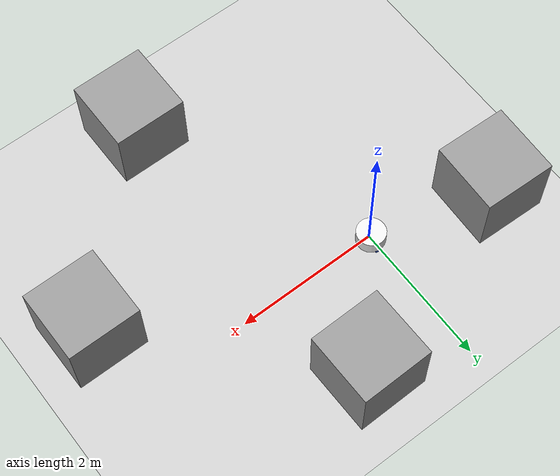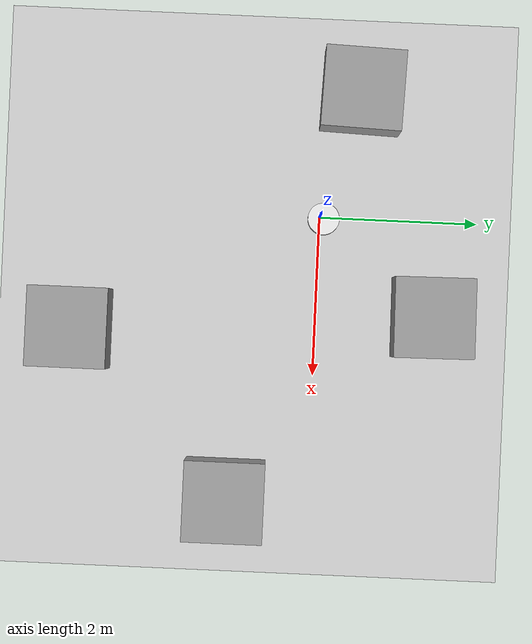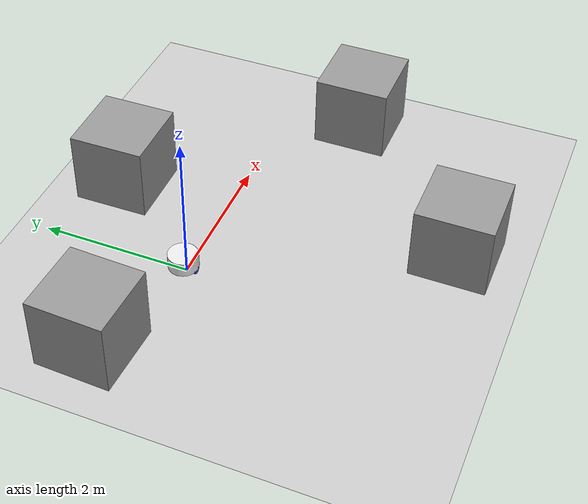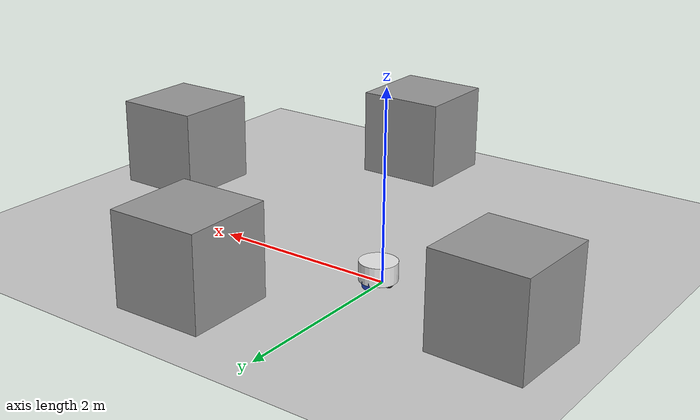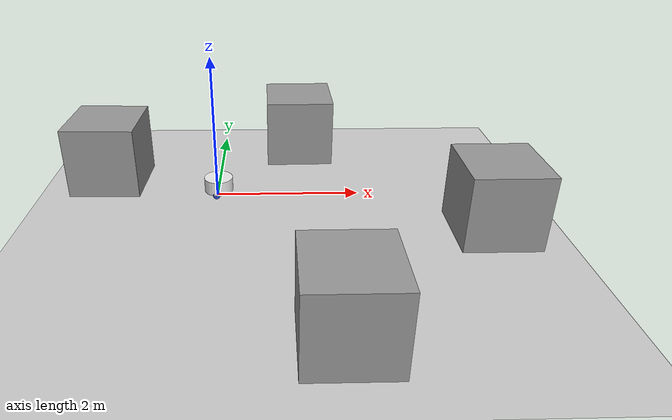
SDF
<sdf version="1.7">
 <world name="default">
  <light name="sun" type="directional">
   <pose>0 0 10 0 -0 0</pose>
   <diffuse>0.8 0.8 0.8 1</diffuse>
   <specular>0.2 0.2 0.2 1</specular>
   <attenuation>
    <range>1000</range>
    <constant>0.9</constant>
    <linear>0.01</linear>
    <quadratic>0.001</quadratic>
   </attenuation>
   <direction>-0.5 0.1 -0.9</direction>
   <spot><inner_angle>0</inner_angle><outer_angle>0</outer_angle><falloff>0</falloff></spot>
  </light>
  <model name="ground_plane">
   <static>1</static>
   <link name="link">
    <collision name="collision">
     <geometry><plane><normal>0 0 1</normal><size>100 100</size></plane></geometry>
     <surface>
      <contact><collide_bitmask>65535</collide_bitmask></contact>
      <friction><ode><mu>100</mu><mu2>50</mu2></ode></friction>
     </surface>
    </collision>
    <visual name="visual">
     <cast_shadows>0</cast_shadows>
     <geometry><plane><normal>0 0 1</normal><size>100 100</size></plane></geometry>
     <material>
      <script><uri>file://media/materials/scripts/gazebo.material</uri><name>Gazebo/Grey</name></script>
     </material>
    </visual>
   </link>
  </model>
  <gravity>0 0 -9.8</gravity>
  <magnetic_field>6e-06 2.3e-05 -4.2e-05</magnetic_field>
  <atmosphere type="adiabatic"/>
  <physics type="ode">
   <max_step_size>0.001</max_step_size>
   <real_time_factor>1</real_time_factor>
   <real_time_update_rate>1000</real_time_update_rate>
  </physics>
  <scene><ambient>0.4 0.4 0.4 1</ambient><background>0.7 0.7 0.7 1</background><shadows>1</shadows></scene>
  <spherical_coordinates>
   <surface_model>EARTH_WGS84</surface_model>
   <latitude_deg>0</latitude_deg>
   <longitude_deg>0</longitude_deg>
   <elevation>0</elevation>
   <heading_deg>0</heading_deg>
  </spherical_coordinates>
  <model name="my_bot">
   <link name="base_link">
    <inertial>
     <pose>0.165 0 0.0625 0 -0 0</pose>
     <mass>0.6</mass>
     <inertia>
      <ixx>0.00723542</ixx>
      <ixy>0</ixy>
      <ixz>0.0005625</ixz>
      <iyy>0.0112438</iyy>
      <iyz>0</iyz>
      <izz>0.00410833</izz>
     </inertia>
    </inertial>
    <collision name="base_link_fixed_joint_lump__chassis_collision">
     <pose>0.1 0 0.1 0 -0 0</pose>
     <geometry><cylinder><length>0.2</length><radius>0.2</radius></cylinder></geometry>
    </collision>
    <collision name="base_link_fixed_joint_lump__back_caster_wheel_collision_1">
     <pose>-0.035 0 0 0 -0 0</pose>
     <geometry><sphere><radius>0.05</radius></sphere></geometry>
     <surface><friction><ode><mu>0.001</mu><mu2>0.001</mu2></ode></friction></surface>
    </collision>
    <collision name="base_link_fixed_joint_lump__front_caster_wheel_collision_2">
     <pose>0.24 0 0 0 -0 0</pose>
     <geometry><sphere><radius>0.05</radius></sphere></geometry>
     <surface><friction><ode><mu>0.001</mu><mu2>0.001</mu2></ode></friction></surface>
    </collision>
    <visual name="base_link_fixed_joint_lump__chassis_visual">
     <pose>0.1 0 0.1 0 -0 0</pose>
     <geometry><cylinder><length>0.2</length><radius>0.2</radius></cylinder></geometry>
     <material>
      <script><name>Gazebo/White</name><uri>file://media/materials/scripts/gazebo.material</uri></script>
     </material>
    </visual>
    <visual name="base_link_fixed_joint_lump__back_caster_wheel_visual_1">
     <pose>-0.035 0 0 0 -0 0</pose>
     <geometry><sphere><radius>0.05</radius></sphere></geometry>
     <material>
      <script><name>Gazebo/Black</name><uri>file://media/materials/scripts/gazebo.material</uri></script>
     </material>
    </visual>
    <visual name="base_link_fixed_joint_lump__front_caster_wheel_visual_2">
     <pose>0.24 0 0 0 -0 0</pose>
     <geometry><sphere><radius>0.05</radius></sphere></geometry>
     <material>
      <script><name>Gazebo/Black</name><uri>file://media/materials/scripts/gazebo.material</uri></script>
     </material>
    </visual>
   </link>
   <joint name="left_wheel_joint" type="revolute">
    <pose relative_to="base_link">0.1 0.175 0 -1.5708 0 0</pose>
    <parent>base_link</parent>
    <child>left_wheel</child>
    <axis>
     <xyz>0 0 1</xyz>
     <limit><lower>-1e+16</lower><upper>1e+16</upper></limit>
     <dynamics><spring_reference>0</spring_reference><spring_stiffness>0</spring_stiffness></dynamics>
    </axis>
   </joint>
   <link name="left_wheel">
    <pose relative_to="left_wheel_joint">0 0 0 0 -0 0</pose>
    <inertial>
     <mass>0.1</mass>
     <inertia>
      <ixx>7.58333e-05</ixx>
      <ixy>0</ixy>
      <ixz>0</ixz>
      <iyy>7.58333e-05</iyy>
      <iyz>0</iyz>
      <izz>0.000125</izz>
     </inertia>
    </inertial>
    <collision name="left_wheel_collision">
     <geometry><cylinder><length>0.04</length><radius>0.05</radius></cylinder></geometry>
    </collision>
    <visual name="left_wheel_visual">
     <geometry><cylinder><length>0.04</length><radius>0.05</radius></cylinder></geometry>
     <material>
      <script><name>Gazebo/Blue</name><uri>file://media/materials/scripts/gazebo.material</uri></script>
     </material>
    </visual>
   </link>
   <joint name="right_wheel_joint" type="revolute">
    <pose relative_to="base_link">0.1 -0.175 0 1.5708 -0 0</pose>
    <parent>base_link</parent>
    <child>right_wheel</child>
    <axis>
     <xyz>0 0 -1</xyz>
     <limit><lower>-1e+16</lower><upper>1e+16</upper></limit>
     <dynamics><spring_reference>0</spring_reference><spring_stiffness>0</spring_stiffness></dynamics>
    </axis>
   </joint>
   <link name="right_wheel">
    <pose relative_to="right_wheel_joint">0 0 0 0 -0 0</pose>
    <inertial>
     <mass>0.1</mass>
     <inertia>
      <ixx>7.58333e-05</ixx>
      <ixy>0</ixy>
      <ixz>0</ixz>
      <iyy>7.58333e-05</iyy>
      <iyz>0</iyz>
      <izz>0.000125</izz>
     </inertia>
    </inertial>
    <collision name="right_wheel_collision">
     <geometry><cylinder><length>0.04</length><radius>0.05</radius></cylinder></geometry>
    </collision>
    <visual name="right_wheel_visual">
     <geometry><cylinder><length>0.04</length><radius>0.05</radius></cylinder></geometry>
     <material>
      <script><name>Gazebo/Blue</name><uri>file://media/materials/scripts/gazebo.material</uri></script>
     </material>
    </visual>
   </link>
   <static>0</static>
   <plugin name="diff_drive" filename="libgazebo_ros_diff_drive.so">
    <left_joint>left_wheel_joint</left_joint>
    <right_joint>right_wheel_joint</right_joint>
    <wheel_separation>0.35</wheel_separation>
    <wheel_diameter>0.1</wheel_diameter>
    <max_wheel_torque>200</max_wheel_torque>
    <max_wheel_acceleration>10.0</max_wheel_acceleration>
    <odometry_frame>odom</odometry_frame>
    <robot_base_frame>base_link</robot_base_frame>
    <publish_odom>1</publish_odom>
    <publish_odom_tf>1</publish_odom_tf>
    <publish_wheel_tf>1</publish_wheel_tf>
   </plugin>
   <pose>-0.081352 0.062534 0.05 0 -0 -0.108269</pose>
  </model>
  <model name="unit_box">
   <pose>1.51749 -3.0707 0.499995 -1e-05 -0 -0</pose>
   <link name="link">
    <inertial>
     <mass>1</mass>
     <inertia>
      <ixx>0.166667</ixx>
      <ixy>0</ixy>
      <ixz>0</ixz>
      <iyy>0.166667</iyy>
      <iyz>0</iyz>
      <izz>0.166667</izz>
     </inertia>
    </inertial>
    <collision name="collision"><geometry><box><size>1 1 1</size></box></geometry></collision>
    <visual name="visual">
     <geometry><box><size>1 1 1</size></box></geometry>
     <material>
      <script><name>Gazebo/Grey</name><uri>file://media/materials/scripts/gazebo.material</uri></script>
     </material>
    </visual>
   </link>
  </model>
  <model name="unit_box_0">
   <pose>3.59158 -1.04775 0.499995 0 1e-05 0</pose>
   <link name="link">
    <inertial>
     <mass>1</mass>
     <inertia>
      <ixx>0.166667</ixx>
      <ixy>0</ixy>
      <ixz>0</ixz>
      <iyy>0.166667</iyy>
      <iyz>0</iyz>
      <izz>0.166667</izz>
     </inertia>
    </inertial>
    <collision name="collision"><geometry><box><size>1 1 1</size></box></geometry></collision>
    <visual name="visual">
     <geometry><box><size>1 1 1</size></box></geometry>
     <material>
      <script><name>Gazebo/Grey</name><uri>file://media/materials/scripts/gazebo.material</uri></script>
     </material>
    </visual>
   </link>
  </model>
  <model name="unit_box_1">
   <pose>-1.58737 0.466041 0.499663 0.000256 0.000556 -0.033584</pose>
   <link name="link">
    <inertial>
     <mass>1</mass>
     <inertia>
      <ixx>0.166667</ixx>
      <ixy>0</ixy>
      <ixz>0</ixz>
      <iyy>0.166667</iyy>
      <iyz>0</iyz>
      <izz>0.166667</izz>
     </inertia>
    </inertial>
    <collision name="collision"><geometry><box><size>1 1 1</size></box></geometry></collision>
    <visual name="visual">
     <geometry><box><size>1 1 1</size></box></geometry>
     <material>
      <script><name>Gazebo/Grey</name><uri>file://media/materials/scripts/gazebo.material</uri></script>
     </material>
    </visual>
   </link>
  </model>
  <model name="unit_box_2">
   <pose>1.20725 1.46115 0.499915 0.000258 0.000124 0.013016</pose>
   <link name="link">
    <inertial>
     <mass>1</mass>
     <inertia>
      <ixx>0.166667</ixx>
      <ixy>0</ixy>
      <ixz>0</ixz>
      <iyy>0.166667</iyy>
      <iyz>0</iyz>
      <izz>0.166667</izz>
     </inertia>
    </inertial>
    <collision name="collision"><geometry><box><size>1 1 1</size></box></geometry></collision>
    <visual name="visual">
     <geometry><box><size>1 1 1</size></box></geometry>
     <material>
      <script><name>Gazebo/Grey</name><uri>file://media/materials/scripts/gazebo.material</uri></script>
     </material>
    </visual>
   </link>
  </model>
 </world>
</sdf>
